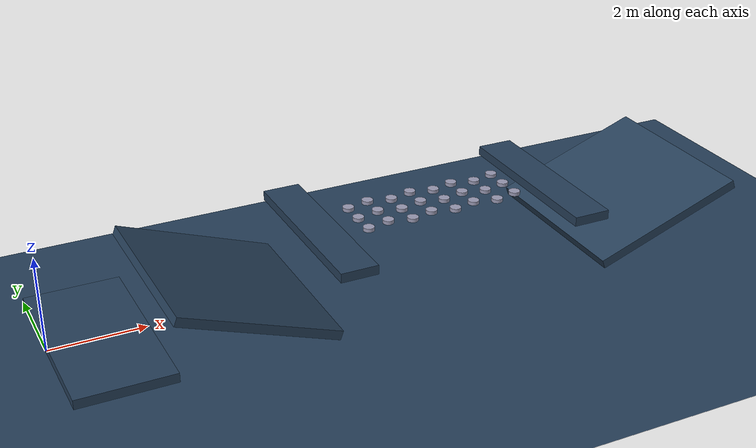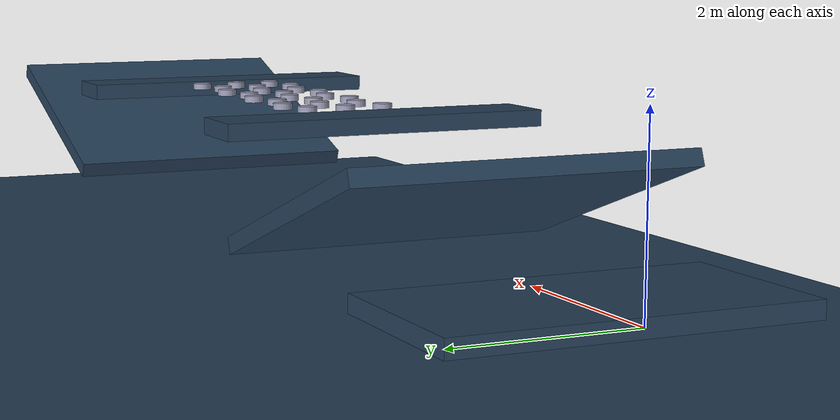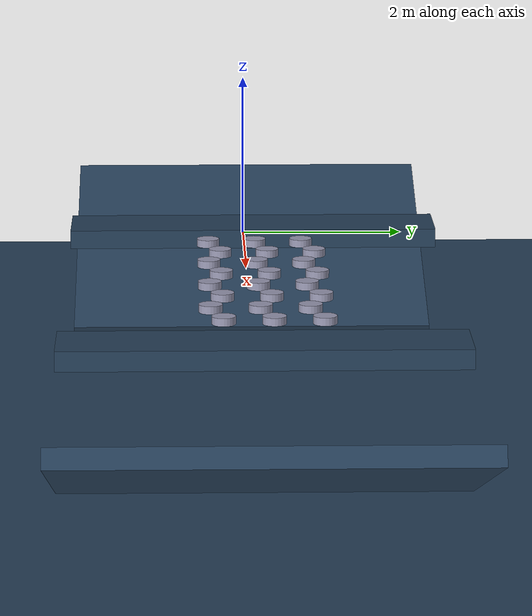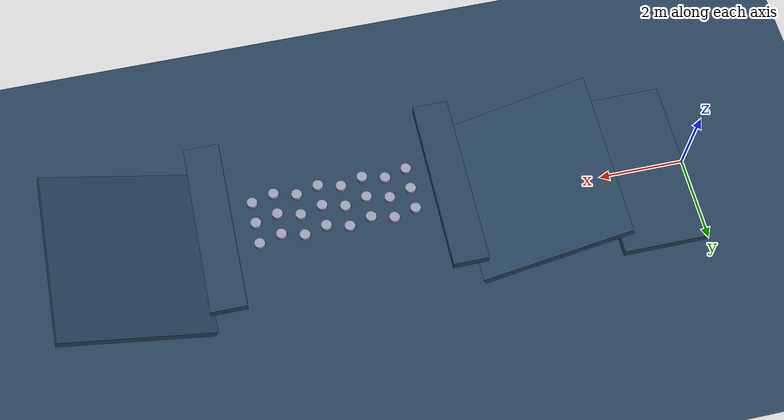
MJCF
<mujoco model="stepping_stones_terrain">
  <asset>
    <texture name="grid" type="2d" builtin="checker" width="512" height="512" rgb1=".1 .2 .3" rgb2=".2 .3 .4"/>
    <material name="grid" texture="grid" texrepeat="1 1" texuniform="true" reflectance=".2"/>
    <material name="stone" rgba=".6 .6 .7 1"/>
  </asset>

  <worldbody>
    <light pos="0 0 3" dir="0 0 -1" directional="true"/>

    <!-- Flat starting area (robot spawn point) -->
    <geom name="flat_start" type="box" pos="1.0 0 0.0" size="1.0 2.0 0.1" material="grid" friction="1.0 0.005 0.0001"/>

    <!-- Uphill slope -->
    <geom name="uphill" type="box" pos="3.6444620863753396 0 0.5985352508199202" size="1.75 2.0 0.1" euler="0 20.0 0" material="grid" friction="1.0 0.005 0.0001"/>

    <!-- First flat section -->
    <geom name="flat1" type="box" pos="5.68892417275068 0 1.2738958199317083" size="0.4 2.0 0.1" material="grid" friction="1.0 0.005 0.0001"/>

    <!-- Stepping stones section -->
    <geom name="stone_0" type="cylinder" pos="6.588924172750679 -0.5 1.3538958199317084" size="0.12 0.04" material="stone" friction="1.0 0.005 0.0001"/>
    <geom name="stone_1" type="cylinder" pos="6.588924172750679 0.0 1.3538958199317084" size="0.12 0.04" material="stone" friction="1.0 0.005 0.0001"/>
    <geom name="stone_2" type="cylinder" pos="6.588924172750679 0.5 1.3538958199317084" size="0.12 0.04" material="stone" friction="1.0 0.005 0.0001"/>
    <geom name="stone_3" type="cylinder" pos="7.088924172750679 -0.375 1.3538958199317084" size="0.12 0.04" material="stone" friction="1.0 0.005 0.0001"/>
    <geom name="stone_4" type="cylinder" pos="7.088924172750679 0.125 1.3538958199317084" size="0.12 0.04" material="stone" friction="1.0 0.005 0.0001"/>
    <geom name="stone_5" type="cylinder" pos="7.088924172750679 0.625 1.3538958199317084" size="0.12 0.04" material="stone" friction="1.0 0.005 0.0001"/>
    <geom name="stone_6" type="cylinder" pos="7.588924172750679 -0.5 1.3538958199317084" size="0.12 0.04" material="stone" friction="1.0 0.005 0.0001"/>
    <geom name="stone_7" type="cylinder" pos="7.588924172750679 0.0 1.3538958199317084" size="0.12 0.04" material="stone" friction="1.0 0.005 0.0001"/>
    <geom name="stone_8" type="cylinder" pos="7.588924172750679 0.5 1.3538958199317084" size="0.12 0.04" material="stone" friction="1.0 0.005 0.0001"/>
    <geom name="stone_9" type="cylinder" pos="8.08892417275068 -0.375 1.3538958199317084" size="0.12 0.04" material="stone" friction="1.0 0.005 0.0001"/>
    <geom name="stone_10" type="cylinder" pos="8.08892417275068 0.125 1.3538958199317084" size="0.12 0.04" material="stone" friction="1.0 0.005 0.0001"/>
    <geom name="stone_11" type="cylinder" pos="8.08892417275068 0.625 1.3538958199317084" size="0.12 0.04" material="stone" friction="1.0 0.005 0.0001"/>
    <geom name="stone_12" type="cylinder" pos="8.58892417275068 -0.5 1.3538958199317084" size="0.12 0.04" material="stone" friction="1.0 0.005 0.0001"/>
    <geom name="stone_13" type="cylinder" pos="8.58892417275068 0.0 1.3538958199317084" size="0.12 0.04" material="stone" friction="1.0 0.005 0.0001"/>
    <geom name="stone_14" type="cylinder" pos="8.58892417275068 0.5 1.3538958199317084" size="0.12 0.04" material="stone" friction="1.0 0.005 0.0001"/>
    <geom name="stone_15" type="cylinder" pos="9.08892417275068 -0.375 1.3538958199317084" size="0.12 0.04" material="stone" friction="1.0 0.005 0.0001"/>
    <geom name="stone_16" type="cylinder" pos="9.08892417275068 0.125 1.3538958199317084" size="0.12 0.04" material="stone" friction="1.0 0.005 0.0001"/>
    <geom name="stone_17" type="cylinder" pos="9.08892417275068 0.625 1.3538958199317084" size="0.12 0.04" material="stone" friction="1.0 0.005 0.0001"/>
    <geom name="stone_18" type="cylinder" pos="9.58892417275068 -0.5 1.3538958199317084" size="0.12 0.04" material="stone" friction="1.0 0.005 0.0001"/>
    <geom name="stone_19" type="cylinder" pos="9.58892417275068 0.0 1.3538958199317084" size="0.12 0.04" material="stone" friction="1.0 0.005 0.0001"/>
    <geom name="stone_20" type="cylinder" pos="9.58892417275068 0.5 1.3538958199317084" size="0.12 0.04" material="stone" friction="1.0 0.005 0.0001"/>
    <geom name="stone_21" type="cylinder" pos="10.08892417275068 -0.375 1.3538958199317084" size="0.12 0.04" material="stone" friction="1.0 0.005 0.0001"/>
    <geom name="stone_22" type="cylinder" pos="10.08892417275068 0.125 1.3538958199317084" size="0.12 0.04" material="stone" friction="1.0 0.005 0.0001"/>
    <geom name="stone_23" type="cylinder" pos="10.08892417275068 0.625 1.3538958199317084" size="0.12 0.04" material="stone" friction="1.0 0.005 0.0001"/>

    <!-- Second flat section -->
    <geom name="flat2" type="box" pos="10.98892417275068 0 1.2738958199317083" size="0.4 2.0 0.1" material="grid" friction="1.0 0.005 0.0001"/>

    <!-- Downhill slope -->
    <geom name="downhill" type="box" pos="13.03338625912602 0 0.6753605691117881" size="1.75 2.0 0.1" euler="0 -20.0 0" material="grid" friction="1.0 0.005 0.0001"/>

    <!-- Safety ground plane -->
    <geom name="ground" type="plane" pos="0 0 -1.0" size="50 50 0.1" material="grid" friction="1.0 0.005 0.0001"/>

  </worldbody>
</mujoco>
